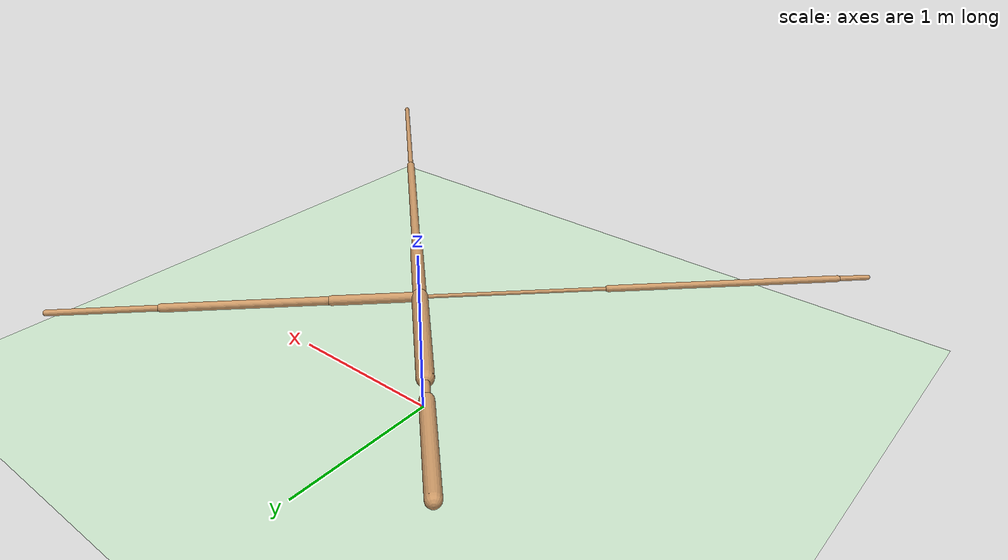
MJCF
<mujoco model="ant">
  <compiler angle="degree" coordinate="local" inertiafromgeom="true" />
  <option integrator="RK4" timestep="0.01" />
  <custom>
    <numeric data="0.0 0.0 0.55 1.0 0.0 0.0 0.0 0.0 1.0 0.0 -1.0 0.0 -1.0 0.0 1.0" name="init_qpos" />
  </custom>
  <default>
    <joint armature="1" damping="1" limited="true" />
    <geom conaffinity="0" condim="3" density="5.0" friction="1 0.5 0.5" margin="0.01" rgba="0.8 0.6 0.4 1" />
  </default>
  <asset>
    <texture builtin="gradient" height="100" rgb1="1 1 1" rgb2="0 0 0" type="skybox" width="100" />
    <texture builtin="flat" height="1278" mark="cross" markrgb="1 1 1" name="texgeom" random="0.01" rgb1="0.8 0.6 0.4" rgb2="0.8 0.6 0.4" type="cube" width="127" />
    <texture builtin="checker" height="100" name="texplane" rgb1="0 0 0" rgb2="0.8 0.8 0.8" type="2d" width="100" />
    <material name="MatPlane" reflectance="0.5" shininess="1" specular="1" texrepeat="60 60" texture="texplane" />
    <material name="geom" texture="texgeom" texuniform="true" />
  </asset>
  <worldbody>
    <light cutoff="100" diffuse="1 1 1" dir="-0 0 -1.3" directional="true" exponent="1" pos="0 0 1.3" specular=".1 .1 .1" />
    <geom conaffinity="1" condim="3" material="MatPlane" name="floor" pos="0 0 0" rgba="0.8 0.9 0.8 1" size="40 40 40" type="plane" />
    <body name="torso" pos="0 0 0.75">
      <camera name="track" mode="trackcom" pos="0 -11 5" xyaxes="1 0 0 0 0.5 1" />
      <geom name="torso_geom" pos="0 0 0" size="0.03961540758609772" type="sphere" />
      <joint armature="0" damping="0" limited="false" margin="0.01" name="root" pos="0 0 0" type="free" />
      <body name="front_left_leg" pos="0 0 0">
        <geom fromto="0 0 0 0.3378727436065674 0.3378727436065674 0" name="aux_1_geom" size="0.027382822707295418" type="capsule" />
        <body name="aux_1" pos="0.3378727436065674 0.3378727436065674 0">
          <joint axis="0 0 1" name="hip_1" pos="0.0 0.0 0.0" range="-30 30" type="hinge" />
          <geom fromto="0 0 0 0.6347315907478333 0.6347315907478333 0" name="left_leg_geom" size="0.023409556597471237" type="capsule" />
          <body name="left_leg_geom_aux" pos="0.6347315907478333 0.6347315907478333 0">
            <joint axis="-1 1 0" name="ankle_1" pos="0.0 0.0 0.0" range="30 70" type="hinge" />
            <geom fromto="0 0 0 0.41974443197250366 0.41974443197250366 0" name="left_ankle_geom" size="0.016880236566066742" type="capsule" />
          </body>
        </body>
      </body>
      <body name="front_right_leg" pos="0 0 0">
        <geom fromto="0 0 0 -0.5299819111824036 0.5299819111824036 0" name="aux_2_geom" size="0.045388489961624146" type="capsule" />
        <body name="aux_2" pos="-0.5299819111824036 0.5299819111824036 0">
          <joint axis="0 0 1" name="hip_2" pos="0.0 0.0 0.0" range="-30 30" type="hinge" />
          <geom fromto="0 0 0 -0.12076619267463684 0.12076619267463684 0" name="right_leg_geom" size="0.020514704287052155" type="capsule" />
          <body name="right_leg_geom_aux" pos="-0.12076619267463684 0.12076619267463684 0">
            <joint axis="1 1 0" name="ankle_2" pos="0.0 0.0 0.0" range="-70 -30" type="hinge" />
            <geom fromto="0 0 0 -0.4481312036514282 0.4481312036514282 0" name="right_ankle_geom" size="0.03839520737528801" type="capsule" />
          </body>
        </body>
      </body>
      <body name="back_leg" pos="0 0 0">
        <geom fromto="0 0 0 -0.7363424897193909 -0.7363424897193909 0" name="aux_3_geom" size="0.01032112818211317" type="capsule" />
        <body name="aux_3" pos="-0.7363424897193909 -0.7363424897193909 0">
          <joint axis="0 0 1" name="hip_3" pos="0.0 0.0 0.0" range="-30 30" type="hinge" />
          <geom fromto="0 0 0 -0.9270151257514954 -0.9270151257514954 0" name="back_leg_geom" size="0.018171243369579315" type="capsule" />
          <body name="back_leg_geom_aux" pos="-0.9270151257514954 -0.9270151257514954 0">
            <joint axis="-1 1 0" name="ankle_3" pos="0.0 0.0 0.0" range="-70 -30" type="hinge" />
            <geom fromto="0 0 0 -0.12452441453933716 -0.12452441453933716 0" name="third_ankle_geom" size="0.013952799141407013" type="capsule" />
          </body>
        </body>
      </body>
      <body name="right_back_leg" pos="0 0 0">
        <geom fromto="0 0 0 0.3890277147293091 -0.3890277147293091 0" name="aux_4_geom" size="0.03825414925813675" type="capsule" />
        <body name="aux_4" pos="0.3890277147293091 -0.3890277147293091 0">
          <joint axis="0 0 1" name="hip_4" pos="0.0 0.0 0.0" range="-30 30" type="hinge" />
          <geom fromto="0 0 0 0.9348198771476746 -0.9348198771476746 0" name="rightback_leg_geom" size="0.026212412863969803" type="capsule" />
          <body name="rightback_leg_geom_aux" pos="0.9348198771476746 -0.9348198771476746 0">
            <joint axis="1 1 0" name="ankle_4" pos="0.0 0.0 0.0" range="30 70" type="hinge" />
            <geom fromto="0 0 0 0.8844575881958008 -0.8844575881958008 0" name="fourth_ankle_geom" size="0.016623040661215782" type="capsule" />
          </body>
        </body>
      </body>
    </body>
  </worldbody>
  <actuator>
    <motor ctrllimited="true" ctrlrange="-1.0 1.0" joint="hip_4" gear="150" />
    <motor ctrllimited="true" ctrlrange="-1.0 1.0" joint="ankle_4" gear="150" />
    <motor ctrllimited="true" ctrlrange="-1.0 1.0" joint="hip_1" gear="150" />
    <motor ctrllimited="true" ctrlrange="-1.0 1.0" joint="ankle_1" gear="150" />
    <motor ctrllimited="true" ctrlrange="-1.0 1.0" joint="hip_2" gear="150" />
    <motor ctrllimited="true" ctrlrange="-1.0 1.0" joint="ankle_2" gear="150" />
    <motor ctrllimited="true" ctrlrange="-1.0 1.0" joint="hip_3" gear="150" />
    <motor ctrllimited="true" ctrlrange="-1.0 1.0" joint="ankle_3" gear="150" />
  </actuator>
</mujoco>
